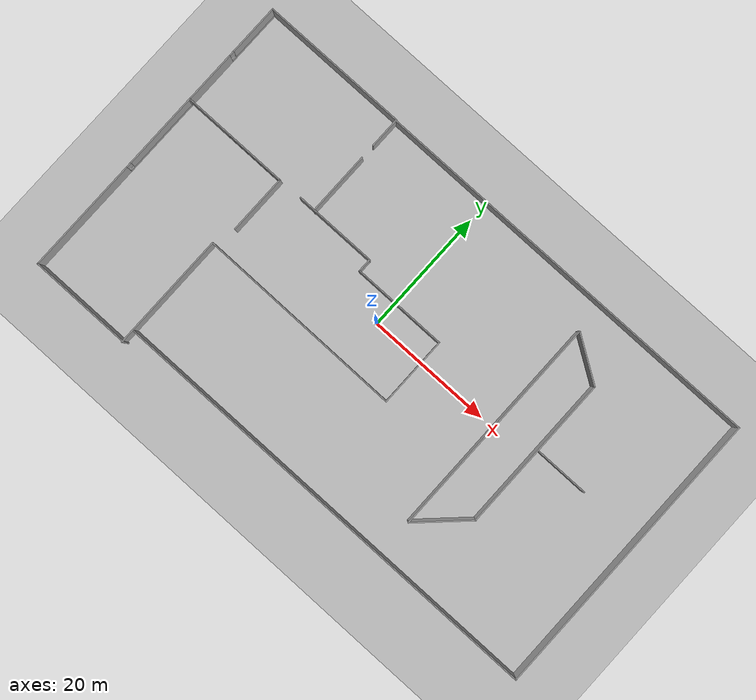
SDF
<sdf version="1.5">
 <world name="default">
  <light name="sun" type="directional">
   <pose>0 0 10 0 -0 0</pose>
   <diffuse>0.8 0.8 0.8 1</diffuse>
   <specular>0.1 0.1 0.1 1</specular>
   <attenuation>
    <range>1000</range>
    <constant>0.9</constant>
    <linear>0.01</linear>
    <quadratic>0.001</quadratic>
   </attenuation>
   <direction>-0.5 0.5 -1</direction>
  </light>
  <model name="ground_plane">
   <static>1</static>
   <link name="link">
    <collision name="collision">
     <geometry><plane><normal>0 0 1</normal><size>100 100</size></plane></geometry>
     <surface><friction><ode><mu>100</mu><mu2>50</mu2></ode></friction></surface>
    </collision>
    <visual name="visual">
     <cast_shadows>0</cast_shadows>
     <geometry><plane><normal>0 0 1</normal><size>100 100</size></plane></geometry>
     <material>
      <script><uri>file://media/materials/scripts/gazebo.material</uri><name>Gazebo/Grey</name></script>
     </material>
    </visual>
    <velocity_decay><linear>0</linear><angular>0</angular></velocity_decay>
   </link>
  </model>
  <physics type="ode">
   <max_step_size>0.001</max_step_size>
   <real_time_factor>1</real_time_factor>
   <real_time_update_rate>1000</real_time_update_rate>
   <gravity>0 0 -9.8</gravity>
   <magnetic_field>5.5645e-06 2.28758e-05 -4.23884e-05</magnetic_field>
  </physics>
  <scene><ambient>0.4 0.4 0.4 1</ambient><background>0.7 0.7 0.7 1</background><shadows>1</shadows></scene>
  <spherical_coordinates>
   <surface_model>EARTH_WGS84</surface_model>
   <latitude_deg>0</latitude_deg>
   <longitude_deg>0</longitude_deg>
   <elevation>0</elevation>
   <heading_deg>0</heading_deg>
  </spherical_coordinates>
  <model name="bunch_of_rooms">
   <link name="Wall_10">
    <collision name="Wall_10_Collision">
     <geometry><box><size>19.0166 0.2 2.5</size></box></geometry>
     <pose>0 0 1.25 0 -0 0</pose>
    </collision>
    <visual name="Wall_10_Visual">
     <pose>0 0 1.25 0 -0 0</pose>
     <geometry><box><size>19.0166 0.2 2.5</size></box></geometry>
     <material>
      <script><uri>file://media/materials/scripts/gazebo.material</uri><name>Gazebo/Grey</name></script>
     </material>
    </visual>
    <velocity_decay><linear>0</linear><angular>0</angular></velocity_decay>
    <pose>-22.409 -18.5985 0 0 0 -1.5708</pose>
   </link>
   <link name="Wall_12">
    <collision name="Wall_12_Collision">
     <geometry><box><size>16.6978 0.2 2.5</size></box></geometry>
     <pose>0 0 1.25 0 -0 0</pose>
    </collision>
    <visual name="Wall_12_Visual">
     <pose>0 0 1.25 0 -0 0</pose>
     <geometry><box><size>16.6978 0.2 2.5</size></box></geometry>
     <material>
      <script><uri>file://media/materials/scripts/gazebo.material</uri><name>Gazebo/Grey</name></script>
     </material>
    </visual>
    <velocity_decay><linear>0</linear><angular>0</angular></velocity_decay>
    <pose>-30.4115 -27.8648 0 0 -0 3.14159</pose>
   </link>
   <link name="Wall_13">
    <pose>-38.6604 -12.065 0 0 -0 1.5708</pose>
    <visual name="Wall_13_Visual_0">
     <pose>-6.61487 0 1.25 0 -0 0</pose>
     <geometry><box><size>18.5698 0.2 2.5</size></box></geometry>
     <material>
      <script><uri>file://media/materials/scripts/gazebo.material</uri><name>Gazebo/Grey</name></script>
     </material>
    </visual>
    <collision name="Wall_13_Collision_0">
     <geometry><box><size>18.5698 0.2 2.5</size></box></geometry>
     <pose>-6.61487 0 1.25 0 -0 0</pose>
    </collision>
    <visual name="Wall_13_Visual_1">
     <pose>9.28492 0 0.25 0 -0 0</pose>
     <geometry><box><size>13.2297 0.2 0.5</size></box></geometry>
     <material>
      <script><uri>file://media/materials/scripts/gazebo.material</uri><name>Gazebo/Grey</name></script>
     </material>
    </visual>
    <collision name="Wall_13_Collision_1">
     <geometry><box><size>13.2297 0.2 0.5</size></box></geometry>
     <pose>9.28492 0 0.25 0 -0 0</pose>
    </collision>
    <visual name="Wall_13_Visual_2">
     <pose>9.68492 0 1.5 0 -0 0</pose>
     <geometry><box><size>12.4297 0.2 2</size></box></geometry>
     <material>
      <script><uri>file://media/materials/scripts/gazebo.material</uri><name>Gazebo/Grey</name></script>
     </material>
    </visual>
    <collision name="Wall_13_Collision_2">
     <geometry><box><size>12.4297 0.2 2</size></box></geometry>
     <pose>9.68492 0 1.5 0 -0 0</pose>
    </collision>
    <visual name="Wall_13_Visual_3">
     <pose>3.07005 0 1.9 0 -0 0</pose>
     <geometry><box><size>0.8 0.2 1.2</size></box></geometry>
     <material>
      <script><uri>file://media/materials/scripts/gazebo.material</uri><name>Gazebo/Grey</name></script>
     </material>
    </visual>
    <collision name="Wall_13_Collision_3">
     <geometry><box><size>0.8 0.2 1.2</size></box></geometry>
     <pose>3.07005 0 1.9 0 -0 0</pose>
    </collision>
    <velocity_decay><linear>0</linear><angular>0</angular></velocity_decay>
   </link>
   <link name="Wall_14">
    <pose>-30.0308 3.73475 0 0 -0 0</pose>
    <visual name="Wall_14_Visual_0">
     <pose>-4.90028 0 1.25 0 -0 0</pose>
     <geometry><box><size>7.65864 0.2 2.5</size></box></geometry>
     <material>
      <script><uri>file://media/materials/scripts/gazebo.material</uri><name>Gazebo/Grey</name></script>
     </material>
    </visual>
    <collision name="Wall_14_Collision_0">
     <geometry><box><size>7.65864 0.2 2.5</size></box></geometry>
     <pose>-4.90028 0 1.25 0 -0 0</pose>
    </collision>
    <visual name="Wall_14_Visual_1">
     <pose>3.82932 0 0.25 0 -0 0</pose>
     <geometry><box><size>9.80056 0.2 0.5</size></box></geometry>
     <material>
      <script><uri>file://media/materials/scripts/gazebo.material</uri><name>Gazebo/Grey</name></script>
     </material>
    </visual>
    <collision name="Wall_14_Collision_1">
     <geometry><box><size>9.80056 0.2 0.5</size></box></geometry>
     <pose>3.82932 0 0.25 0 -0 0</pose>
    </collision>
    <visual name="Wall_14_Visual_2">
     <pose>4.22932 0 1.5 0 -0 0</pose>
     <geometry><box><size>9.00056 0.2 2</size></box></geometry>
     <material>
      <script><uri>file://media/materials/scripts/gazebo.material</uri><name>Gazebo/Grey</name></script>
     </material>
    </visual>
    <collision name="Wall_14_Collision_2">
     <geometry><box><size>9.00056 0.2 2</size></box></geometry>
     <pose>4.22932 0 1.5 0 -0 0</pose>
    </collision>
    <visual name="Wall_14_Visual_3">
     <pose>-0.670956 0 1.9 0 -0 0</pose>
     <geometry><box><size>0.8 0.2 1.2</size></box></geometry>
     <material>
      <script><uri>file://media/materials/scripts/gazebo.material</uri><name>Gazebo/Grey</name></script>
     </material>
    </visual>
    <collision name="Wall_14_Collision_3">
     <geometry><box><size>0.8 0.2 1.2</size></box></geometry>
     <pose>-0.670956 0 1.9 0 -0 0</pose>
    </collision>
    <velocity_decay><linear>0</linear><angular>0</angular></velocity_decay>
   </link>
   <link name="Wall_15">
    <collision name="Wall_15_Collision">
     <geometry><box><size>9.57689 0.2 2.5</size></box></geometry>
     <pose>0 0 1.25 0 -0 0</pose>
    </collision>
    <visual name="Wall_15_Visual">
     <pose>0 0 1.25 0 -0 0</pose>
     <geometry><box><size>9.57689 0.2 2.5</size></box></geometry>
     <material>
      <script><uri>file://media/materials/scripts/gazebo.material</uri><name>Gazebo/Grey</name></script>
     </material>
    </visual>
    <velocity_decay><linear>0</linear><angular>0</angular></velocity_decay>
    <pose>-21.4012 -0.953695 0 0 0 -1.5708</pose>
   </link>
   <link name="Wall_20">
    <collision name="Wall_20_Collision">
     <geometry><box><size>2.20376 0.2 2.5</size></box></geometry>
     <pose>0 0 1.25 0 -0 0</pose>
    </collision>
    <visual name="Wall_20_Visual">
     <pose>0 0 1.25 0 -0 0</pose>
     <geometry><box><size>2.20376 0.2 2.5</size></box></geometry>
     <material>
      <script><uri>file://media/materials/scripts/gazebo.material</uri><name>Gazebo/Grey</name></script>
     </material>
    </visual>
    <velocity_decay><linear>0</linear><angular>0</angular></velocity_decay>
    <pose>-4.40361 2.86045 0 0 -0 1.5708</pose>
   </link>
   <link name="Wall_21">
    <collision name="Wall_21_Collision">
     <geometry><box><size>13.3199 0.2 2.5</size></box></geometry>
     <pose>0 0 1.25 0 -0 0</pose>
    </collision>
    <visual name="Wall_21_Visual">
     <pose>0 0 1.25 0 -0 0</pose>
     <geometry><box><size>13.3199 0.2 2.5</size></box></geometry>
     <material>
      <script><uri>file://media/materials/scripts/gazebo.material</uri><name>Gazebo/Grey</name></script>
     </material>
    </visual>
    <velocity_decay><linear>0</linear><angular>0</angular></velocity_decay>
    <pose>-10.9635 3.86234 0 0 -0 3.14159</pose>
   </link>
   <link name="Wall_23">
    <pose>-38.6472 12.3583 0 0 -0 1.5708</pose>
    <visual name="Wall_23_Visual_0">
     <pose>-4.55377 0 1.25 0 -0 0</pose>
     <geometry><box><size>8.63859 0.2 2.5</size></box></geometry>
     <material>
      <script><uri>file://media/materials/scripts/gazebo.material</uri><name>Gazebo/Grey</name></script>
     </material>
    </visual>
    <collision name="Wall_23_Collision_0">
     <geometry><box><size>8.63859 0.2 2.5</size></box></geometry>
     <pose>-4.55377 0 1.25 0 -0 0</pose>
    </collision>
    <visual name="Wall_23_Visual_1">
     <pose>4.3193 0 0.25 0 -0 0</pose>
     <geometry><box><size>9.10753 0.2 0.5</size></box></geometry>
     <material>
      <script><uri>file://media/materials/scripts/gazebo.material</uri><name>Gazebo/Grey</name></script>
     </material>
    </visual>
    <collision name="Wall_23_Collision_1">
     <geometry><box><size>9.10753 0.2 0.5</size></box></geometry>
     <pose>4.3193 0 0.25 0 -0 0</pose>
    </collision>
    <visual name="Wall_23_Visual_2">
     <pose>4.71929 0 1.5 0 -0 0</pose>
     <geometry><box><size>8.30753 0.2 2</size></box></geometry>
     <material>
      <script><uri>file://media/materials/scripts/gazebo.material</uri><name>Gazebo/Grey</name></script>
     </material>
    </visual>
    <collision name="Wall_23_Collision_2">
     <geometry><box><size>8.30753 0.2 2</size></box></geometry>
     <pose>4.71929 0 1.5 0 -0 0</pose>
    </collision>
    <visual name="Wall_23_Visual_3">
     <pose>0.165529 0 1.9 0 -0 0</pose>
     <geometry><box><size>0.8 0.2 1.2</size></box></geometry>
     <material>
      <script><uri>file://media/materials/scripts/gazebo.material</uri><name>Gazebo/Grey</name></script>
     </material>
    </visual>
    <collision name="Wall_23_Collision_3">
     <geometry><box><size>0.8 0.2 1.2</size></box></geometry>
     <pose>0.165529 0 1.9 0 -0 0</pose>
    </collision>
    <velocity_decay><linear>0</linear><angular>0</angular></velocity_decay>
   </link>
   <link name="Wall_24">
    <collision name="Wall_24_Collision">
     <geometry><box><size>23.9259 0.2 2.5</size></box></geometry>
     <pose>0 0 1.25 0 -0 0</pose>
    </collision>
    <visual name="Wall_24_Visual">
     <pose>0 0 1.25 0 -0 0</pose>
     <geometry><box><size>23.9259 0.2 2.5</size></box></geometry>
     <material>
      <script><uri>file://media/materials/scripts/gazebo.material</uri><name>Gazebo/Grey</name></script>
     </material>
    </visual>
    <velocity_decay><linear>0</linear><angular>0</angular></velocity_decay>
    <pose>-26.7842 21.1314 0 0 -0 0</pose>
   </link>
   <link name="Wall_25">
    <collision name="Wall_25_Collision">
     <geometry><box><size>5.05553 0.2 2.5</size></box></geometry>
     <pose>0 0 1.25 0 -0 0</pose>
    </collision>
    <visual name="Wall_25_Visual">
     <pose>0 0 1.25 0 -0 0</pose>
     <geometry><box><size>5.05553 0.2 2.5</size></box></geometry>
     <material>
      <script><uri>file://media/materials/scripts/gazebo.material</uri><name>Gazebo/Grey</name></script>
     </material>
    </visual>
    <velocity_decay><linear>0</linear><angular>0</angular></velocity_decay>
    <pose>-14.9213 18.7036 0 0 0 -1.5708</pose>
   </link>
   <link name="Wall_27">
    <collision name="Wall_27_Collision">
     <geometry><box><size>10.2421 0.2 2.5</size></box></geometry>
     <pose>0 0 1.25 0 -0 0</pose>
    </collision>
    <visual name="Wall_27_Visual">
     <pose>0 0 1.25 0 -0 0</pose>
     <geometry><box><size>10.2421 0.2 2.5</size></box></geometry>
     <material>
      <script><uri>file://media/materials/scripts/gazebo.material</uri><name>Gazebo/Grey</name></script>
     </material>
    </visual>
    <velocity_decay><linear>0</linear><angular>0</angular></velocity_decay>
    <pose>-14.9213 8.82702 0 0 0 -1.5708</pose>
   </link>
   <link name="Wall_29">
    <collision name="Wall_29_Collision">
     <geometry><box><size>64.7565 0.2 2.5</size></box></geometry>
     <pose>0 0 1.25 0 -0 0</pose>
    </collision>
    <visual name="Wall_29_Visual">
     <pose>0 0 1.25 0 -0 0</pose>
     <geometry><box><size>64.7565 0.2 2.5</size></box></geometry>
     <material>
      <script><uri>file://media/materials/scripts/gazebo.material</uri><name>Gazebo/Grey</name></script>
     </material>
    </visual>
    <velocity_decay><linear>0</linear><angular>0</angular></velocity_decay>
    <pose>17.4673 21.021 0 0 -0 0</pose>
   </link>
   <link name="Wall_30">
    <collision name="Wall_30_Collision">
     <geometry><box><size>46.9897 0.2 2.5</size></box></geometry>
     <pose>0 0 1.25 0 -0 0</pose>
    </collision>
    <visual name="Wall_30_Visual">
     <pose>0 0 1.25 0 -0 0</pose>
     <geometry><box><size>46.9897 0.2 2.5</size></box></geometry>
     <material>
      <script><uri>file://media/materials/scripts/gazebo.material</uri><name>Gazebo/Grey</name></script>
     </material>
    </visual>
    <velocity_decay><linear>0</linear><angular>0</angular></velocity_decay>
    <pose>49.7455 -2.37381 0 0 0 -1.5708</pose>
   </link>
   <link name="Wall_31">
    <collision name="Wall_31_Collision">
     <geometry><box><size>72.1501 0.2 2.5</size></box></geometry>
     <pose>0 0 1.25 0 -0 0</pose>
    </collision>
    <visual name="Wall_31_Visual">
     <pose>0 0 1.25 0 -0 0</pose>
     <geometry><box><size>72.1501 0.2 2.5</size></box></geometry>
     <material>
      <script><uri>file://media/materials/scripts/gazebo.material</uri><name>Gazebo/Grey</name></script>
     </material>
    </visual>
    <velocity_decay><linear>0</linear><angular>0</angular></velocity_decay>
    <pose>13.7705 -25.7686 0 0 -0 3.14159</pose>
   </link>
   <link name="Wall_33">
    <collision name="Wall_33_Collision">
     <geometry><box><size>25.1398 0.2 2.5</size></box></geometry>
     <pose>0 0 1.25 0 -0 0</pose>
    </collision>
    <visual name="Wall_33_Visual">
     <pose>0 0 1.25 0 -0 0</pose>
     <geometry><box><size>25.1398 0.2 2.5</size></box></geometry>
     <material>
      <script><uri>file://media/materials/scripts/gazebo.material</uri><name>Gazebo/Grey</name></script>
     </material>
    </visual>
    <velocity_decay><linear>0</linear><angular>0</angular></velocity_decay>
    <pose>30.9855 -0.718515 0 0 0 -1.5708</pose>
   </link>
   <link name="Wall_34">
    <collision name="Wall_34_Collision">
     <geometry><box><size>9.56506 0.2 2.5</size></box></geometry>
     <pose>0 0 1.25 0 -0 0</pose>
    </collision>
    <visual name="Wall_34_Visual">
     <pose>0 0 1.25 0 -0 0</pose>
     <geometry><box><size>9.56506 0.2 2.5</size></box></geometry>
     <material>
      <script><uri>file://media/materials/scripts/gazebo.material</uri><name>Gazebo/Grey</name></script>
     </material>
    </visual>
    <velocity_decay><linear>0</linear><angular>0</angular></velocity_decay>
    <pose>27.6198 -16.4438 0 0 0 -2.37286</pose>
   </link>
   <link name="Wall_35">
    <collision name="Wall_35_Collision">
     <geometry><box><size>36.0647 0.2 2.5</size></box></geometry>
     <pose>0 0 1.25 0 -0 0</pose>
    </collision>
    <visual name="Wall_35_Visual">
     <pose>0 0 1.25 0 -0 0</pose>
     <geometry><box><size>36.0647 0.2 2.5</size></box></geometry>
     <material>
      <script><uri>file://media/materials/scripts/gazebo.material</uri><name>Gazebo/Grey</name></script>
     </material>
    </visual>
    <velocity_decay><linear>0</linear><angular>0</angular></velocity_decay>
    <pose>24.254 -1.76687 0 0 -0 1.5708</pose>
   </link>
   <link name="Wall_36">
    <collision name="Wall_36_Collision">
     <geometry><box><size>8.24972 0.2 2.5</size></box></geometry>
     <pose>0 0 1.25 0 -0 0</pose>
    </collision>
    <visual name="Wall_36_Visual">
     <pose>0 0 1.25 0 -0 0</pose>
     <geometry><box><size>8.24972 0.2 2.5</size></box></geometry>
     <material>
      <script><uri>file://media/materials/scripts/gazebo.material</uri><name>Gazebo/Grey</name></script>
     </material>
    </visual>
    <velocity_decay><linear>0</linear><angular>0</angular></velocity_decay>
    <pose>27.6198 13.9584 0 0 0 -0.580398</pose>
   </link>
   <link name="Wall_38">
    <collision name="Wall_38_Collision">
     <geometry><box><size>8.58682 0.2 2.5</size></box></geometry>
     <pose>0 0 1.25 0 -0 0</pose>
    </collision>
    <visual name="Wall_38_Visual">
     <pose>0 0 1.25 0 -0 0</pose>
     <geometry><box><size>8.58682 0.2 2.5</size></box></geometry>
     <material>
      <script><uri>file://media/materials/scripts/gazebo.material</uri><name>Gazebo/Grey</name></script>
     </material>
    </visual>
    <velocity_decay><linear>0</linear><angular>0</angular></velocity_decay>
    <pose>35.3997 -0.16675 0 0 -0 0</pose>
   </link>
   <link name="Wall_7">
    <collision name="Wall_7_Collision">
     <geometry><box><size>15.3024 0.2 2.5</size></box></geometry>
     <pose>0 0 1.25 0 -0 0</pose>
    </collision>
    <visual name="Wall_7_Visual">
     <pose>0 0 1.25 0 -0 0</pose>
     <geometry><box><size>15.3024 0.2 2.5</size></box></geometry>
     <material>
      <script><uri>file://media/materials/scripts/gazebo.material</uri><name>Gazebo/Grey</name></script>
     </material>
    </visual>
    <velocity_decay><linear>0</linear><angular>0</angular></velocity_decay>
    <pose>3.1384 1.77635 0 0 -0 0</pose>
   </link>
   <link name="Wall_8">
    <collision name="Wall_8_Collision">
     <geometry><box><size>11.2935 0.2 2.5</size></box></geometry>
     <pose>0 0 1.25 0 -0 0</pose>
    </collision>
    <visual name="Wall_8_Visual">
     <pose>0 0 1.25 0 -0 0</pose>
     <geometry><box><size>11.2935 0.2 2.5</size></box></geometry>
     <material>
      <script><uri>file://media/materials/scripts/gazebo.material</uri><name>Gazebo/Grey</name></script>
     </material>
    </visual>
    <velocity_decay><linear>0</linear><angular>0</angular></velocity_decay>
    <pose>10.6896 -3.77039 0 0 0 -1.5708</pose>
   </link>
   <link name="Wall_9">
    <collision name="Wall_9_Collision">
     <geometry><box><size>33.2986 0.2 2.5</size></box></geometry>
     <pose>0 0 1.25 0 -0 0</pose>
    </collision>
    <visual name="Wall_9_Visual">
     <pose>0 0 1.25 0 -0 0</pose>
     <geometry><box><size>33.2986 0.2 2.5</size></box></geometry>
     <material>
      <script><uri>file://media/materials/scripts/gazebo.material</uri><name>Gazebo/Grey</name></script>
     </material>
    </visual>
    <velocity_decay><linear>0</linear><angular>0</angular></velocity_decay>
    <pose>-5.85972 -9.25368 0 0 -0 3.13776</pose>
   </link>
   <static>1</static>
   <pose>-2.35017 2.04264 0 0 -0 0</pose>
  </model>
  <plugin filename="libVRCPlugin.so" name="vrc_plugin">
   <atlas><model_name>atlas</model_name><pin_link>utorso</pin_link></atlas>
   <drc_vehicle><model_name>golf_cart</model_name><seat_link>chassis</seat_link></drc_vehicle>
   <drc_fire_hose>
    <fire_hose_model>fire_hose</fire_hose_model>
    <coupling_link>coupling</coupling_link>
    <standpipe_model>standpipe</standpipe_model>
    <spout_link>standpipe</spout_link>
    <thread_pitch>-1000</thread_pitch>
    <coupling_relative_pose>1.17038e-05 -0.125623 0.35 -0.0412152 -1.57078 1.61199</coupling_relative_pose>
   </drc_fire_hose>
  </plugin>
 </world>
</sdf>
